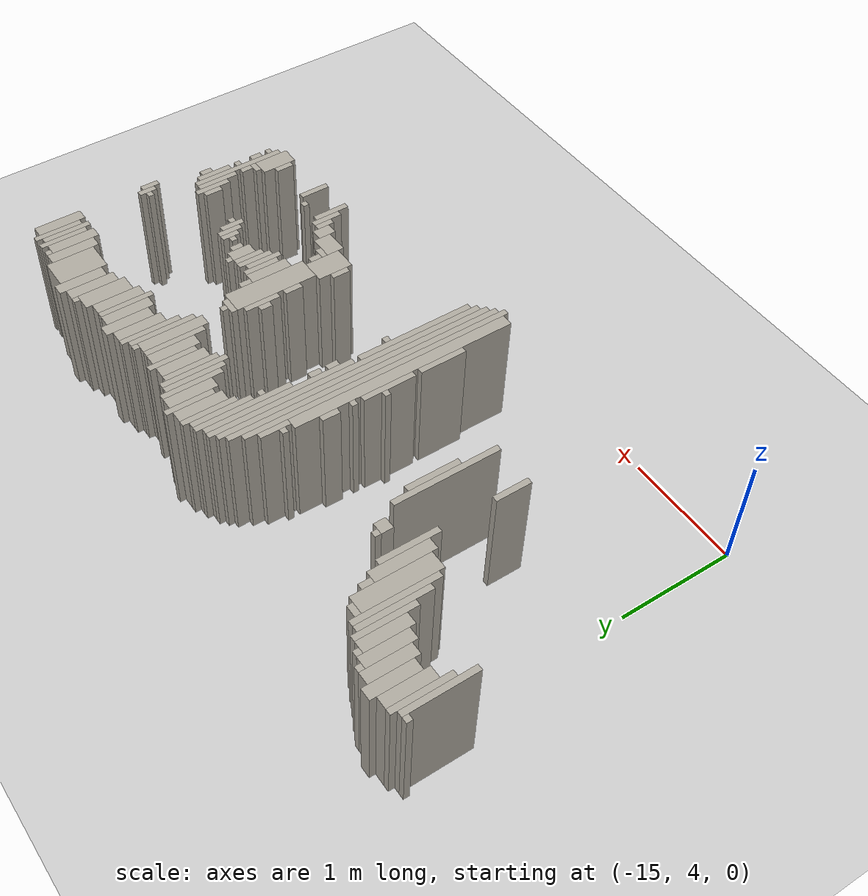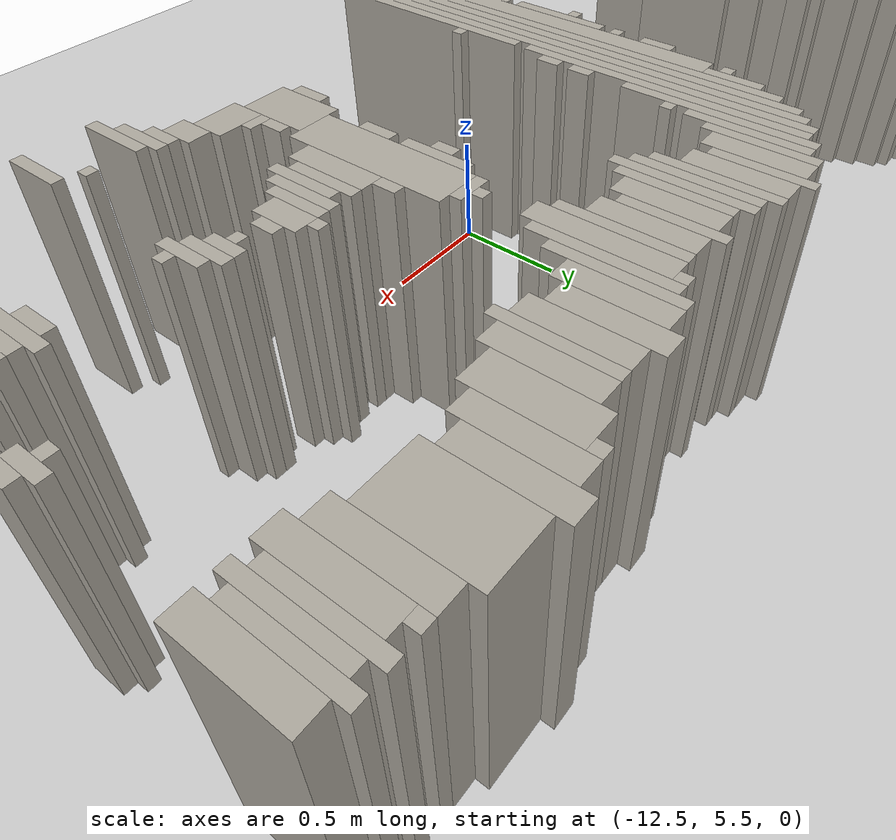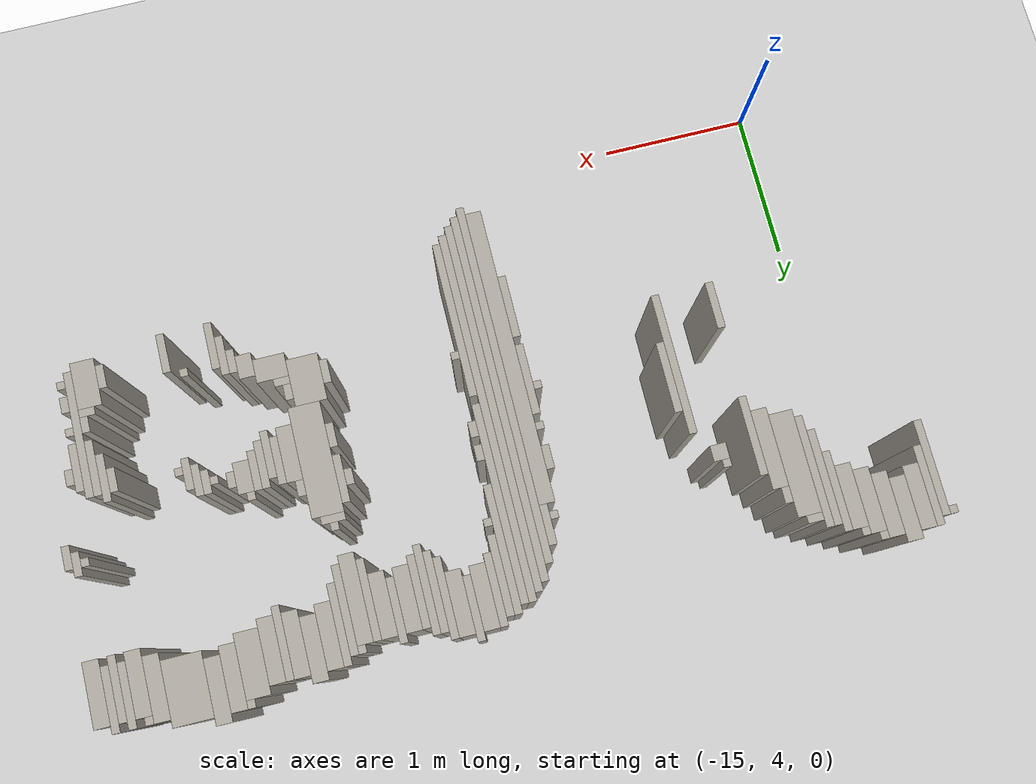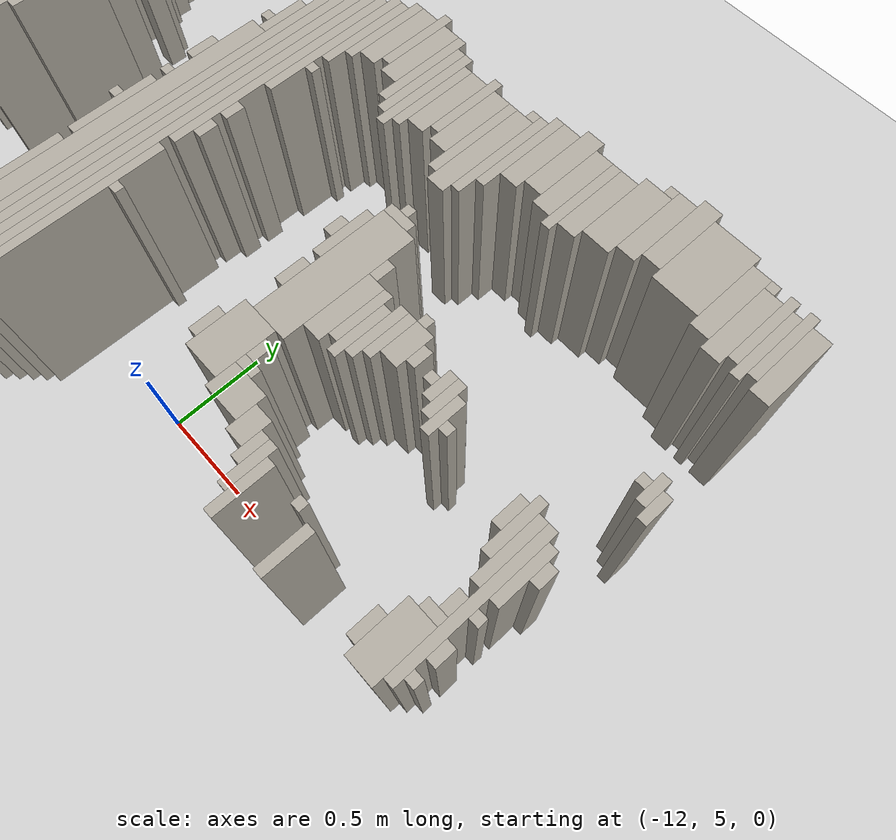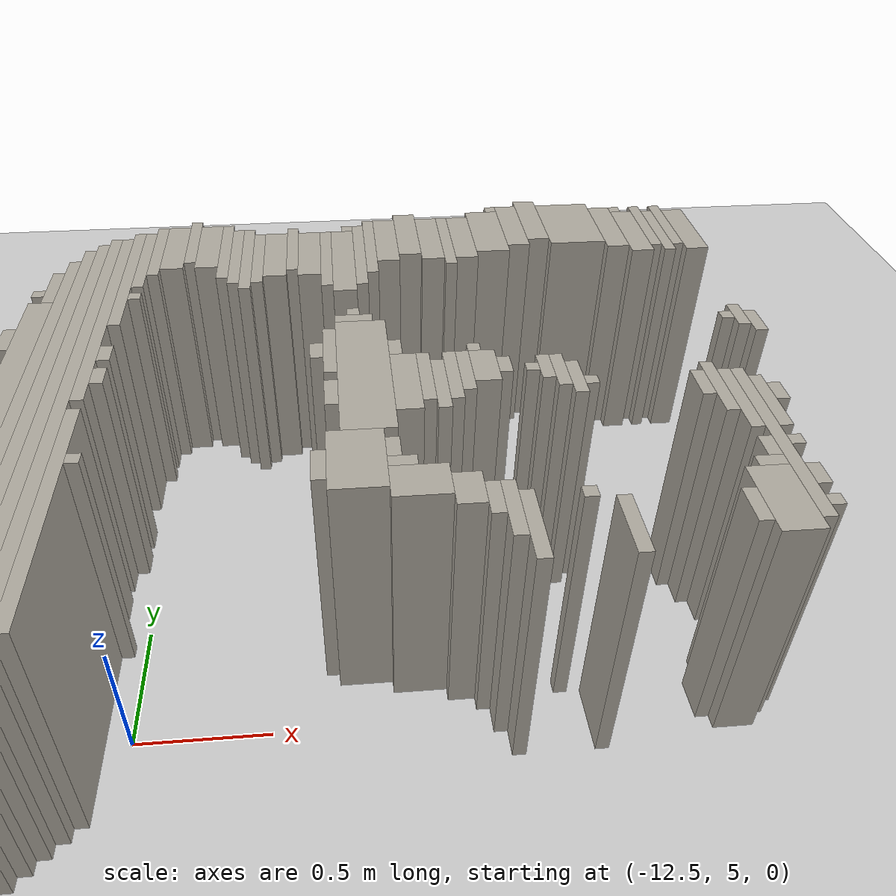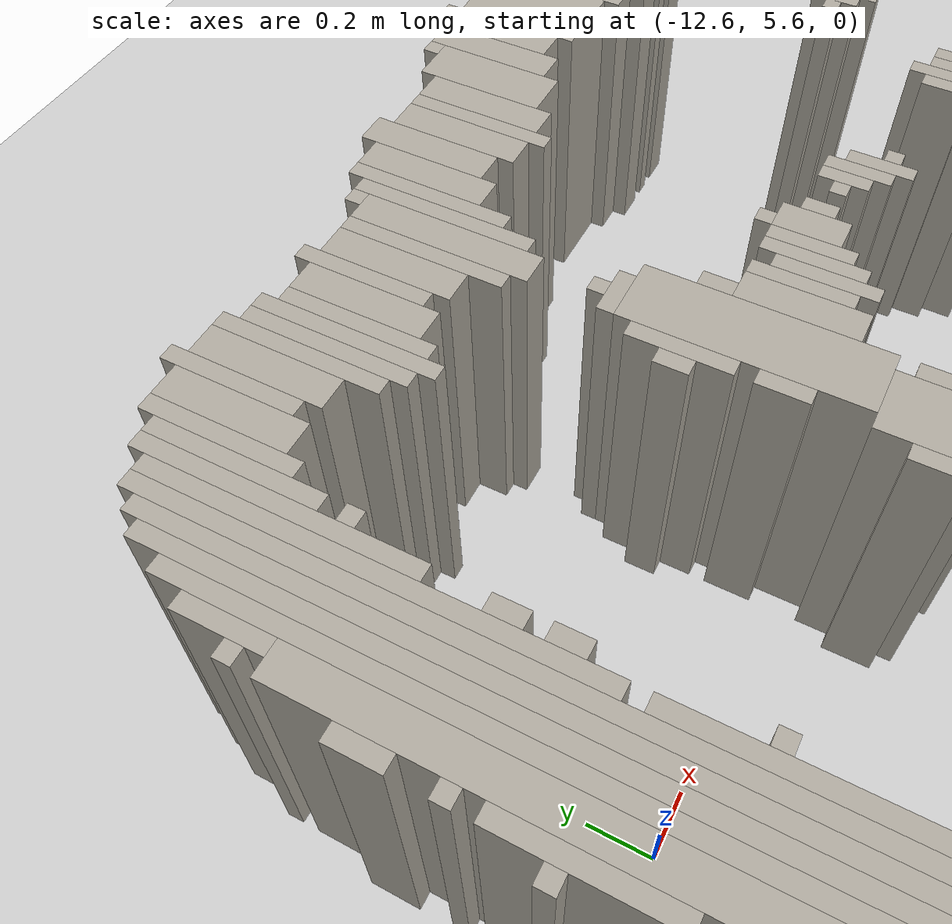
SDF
<sdf version="1.6">
 <world name="fr079_office">
  <include><uri>model://sun</uri></include>
  <include><uri>model://ground_plane</uri></include>
  <model name="fr079_office_walls">
   <static>true</static>
   <link name="w2711">
    <pose>-12.823 5.644 0.500 0 0 0</pose>
    <collision name="c"><geometry><box><size>0.050 2.300 1.000</size></box></geometry></collision>
    <visual name="v">
     <geometry><box><size>0.050 2.300 1.000</size></box></geometry>
     <material><ambient>0.68 0.66 0.62 1</ambient><diffuse>0.68 0.66 0.62 1</diffuse></material>
    </visual>
   </link>
   <link name="w2716">
    <pose>-12.898 5.494 0.500 0 0 0</pose>
    <collision name="c"><geometry><box><size>0.100 1.900 1.000</size></box></geometry></collision>
    <visual name="v">
     <geometry><box><size>0.100 1.900 1.000</size></box></geometry>
     <material><ambient>0.68 0.66 0.62 1</ambient><diffuse>0.68 0.66 0.62 1</diffuse></material>
    </visual>
   </link>
   <link name="w2717">
    <pose>-12.773 5.719 0.500 0 0 0</pose>
    <collision name="c"><geometry><box><size>0.050 2.350 1.000</size></box></geometry></collision>
    <visual name="v">
     <geometry><box><size>0.050 2.350 1.000</size></box></geometry>
     <material><ambient>0.68 0.66 0.62 1</ambient><diffuse>0.68 0.66 0.62 1</diffuse></material>
    </visual>
   </link>
   <link name="w2726">
    <pose>-12.723 5.769 0.500 0 0 0</pose>
    <collision name="c"><geometry><box><size>0.050 2.350 1.000</size></box></geometry></collision>
    <visual name="v">
     <geometry><box><size>0.050 2.350 1.000</size></box></geometry>
     <material><ambient>0.68 0.66 0.62 1</ambient><diffuse>0.68 0.66 0.62 1</diffuse></material>
    </visual>
   </link>
   <link name="w2739">
    <pose>-12.673 5.819 0.500 0 0 0</pose>
    <collision name="c"><geometry><box><size>0.050 2.350 1.000</size></box></geometry></collision>
    <visual name="v">
     <geometry><box><size>0.050 2.350 1.000</size></box></geometry>
     <material><ambient>0.68 0.66 0.62 1</ambient><diffuse>0.68 0.66 0.62 1</diffuse></material>
    </visual>
   </link>
   <link name="w2746">
    <pose>-12.623 5.194 0.500 0 0 0</pose>
    <collision name="c"><geometry><box><size>0.050 1.000 1.000</size></box></geometry></collision>
    <visual name="v">
     <geometry><box><size>0.050 1.000 1.000</size></box></geometry>
     <material><ambient>0.68 0.66 0.62 1</ambient><diffuse>0.68 0.66 0.62 1</diffuse></material>
    </visual>
   </link>
   <link name="w2768">
    <pose>-11.123 4.994 0.500 0 0 0</pose>
    <collision name="c"><geometry><box><size>0.050 0.300 1.000</size></box></geometry></collision>
    <visual name="v">
     <geometry><box><size>0.050 0.300 1.000</size></box></geometry>
     <material><ambient>0.68 0.66 0.62 1</ambient><diffuse>0.68 0.66 0.62 1</diffuse></material>
    </visual>
   </link>
   <link name="w2769">
    <pose>-10.823 4.969 0.500 0 0 0</pose>
    <collision name="c"><geometry><box><size>0.050 0.250 1.000</size></box></geometry></collision>
    <visual name="v">
     <geometry><box><size>0.050 0.250 1.000</size></box></geometry>
     <material><ambient>0.68 0.66 0.62 1</ambient><diffuse>0.68 0.66 0.62 1</diffuse></material>
    </visual>
   </link>
   <link name="w2775">
    <pose>-10.323 5.044 0.500 0 0 0</pose>
    <collision name="c"><geometry><box><size>0.150 0.300 1.000</size></box></geometry></collision>
    <visual name="v">
     <geometry><box><size>0.150 0.300 1.000</size></box></geometry>
     <material><ambient>0.68 0.66 0.62 1</ambient><diffuse>0.68 0.66 0.62 1</diffuse></material>
    </visual>
   </link>
   <link name="w2788">
    <pose>-11.173 5.069 0.500 0 0 0</pose>
    <collision name="c"><geometry><box><size>0.050 0.250 1.000</size></box></geometry></collision>
    <visual name="v">
     <geometry><box><size>0.050 0.250 1.000</size></box></geometry>
     <material><ambient>0.68 0.66 0.62 1</ambient><diffuse>0.68 0.66 0.62 1</diffuse></material>
    </visual>
   </link>
   <link name="w2789">
    <pose>-10.423 5.019 0.500 0 0 0</pose>
    <collision name="c"><geometry><box><size>0.050 0.150 1.000</size></box></geometry></collision>
    <visual name="v">
     <geometry><box><size>0.050 0.150 1.000</size></box></geometry>
     <material><ambient>0.68 0.66 0.62 1</ambient><diffuse>0.68 0.66 0.62 1</diffuse></material>
    </visual>
   </link>
   <link name="w2790">
    <pose>-10.223 5.344 0.500 0 0 0</pose>
    <collision name="c"><geometry><box><size>0.050 0.800 1.000</size></box></geometry></collision>
    <visual name="v">
     <geometry><box><size>0.050 0.800 1.000</size></box></geometry>
     <material><ambient>0.68 0.66 0.62 1</ambient><diffuse>0.68 0.66 0.62 1</diffuse></material>
    </visual>
   </link>
   <link name="w2801">
    <pose>-12.973 5.194 0.500 0 0 0</pose>
    <collision name="c"><geometry><box><size>0.050 0.400 1.000</size></box></geometry></collision>
    <visual name="v">
     <geometry><box><size>0.050 0.400 1.000</size></box></geometry>
     <material><ambient>0.68 0.66 0.62 1</ambient><diffuse>0.68 0.66 0.62 1</diffuse></material>
    </visual>
   </link>
   <link name="w2802">
    <pose>-10.173 5.019 0.500 0 0 0</pose>
    <collision name="c"><geometry><box><size>0.050 0.050 1.000</size></box></geometry></collision>
    <visual name="v">
     <geometry><box><size>0.050 0.050 1.000</size></box></geometry>
     <material><ambient>0.68 0.66 0.62 1</ambient><diffuse>0.68 0.66 0.62 1</diffuse></material>
    </visual>
   </link>
   <link name="w2817">
    <pose>-11.223 5.119 0.500 0 0 0</pose>
    <collision name="c"><geometry><box><size>0.050 0.150 1.000</size></box></geometry></collision>
    <visual name="v">
     <geometry><box><size>0.050 0.150 1.000</size></box></geometry>
     <material><ambient>0.68 0.66 0.62 1</ambient><diffuse>0.68 0.66 0.62 1</diffuse></material>
    </visual>
   </link>
   <link name="w2822">
    <pose>-11.298 5.169 0.500 0 0 0</pose>
    <collision name="c"><geometry><box><size>0.100 0.150 1.000</size></box></geometry></collision>
    <visual name="v">
     <geometry><box><size>0.100 0.150 1.000</size></box></geometry>
     <material><ambient>0.68 0.66 0.62 1</ambient><diffuse>0.68 0.66 0.62 1</diffuse></material>
    </visual>
   </link>
   <link name="w2823">
    <pose>-10.923 5.119 0.500 0 0 0</pose>
    <collision name="c"><geometry><box><size>0.050 0.050 1.000</size></box></geometry></collision>
    <visual name="v">
     <geometry><box><size>0.050 0.050 1.000</size></box></geometry>
     <material><ambient>0.68 0.66 0.62 1</ambient><diffuse>0.68 0.66 0.62 1</diffuse></material>
    </visual>
   </link>
   <link name="w2824">
    <pose>-10.173 5.144 0.500 0 0 0</pose>
    <collision name="c"><geometry><box><size>0.050 0.100 1.000</size></box></geometry></collision>
    <visual name="v">
     <geometry><box><size>0.050 0.100 1.000</size></box></geometry>
     <material><ambient>0.68 0.66 0.62 1</ambient><diffuse>0.68 0.66 0.62 1</diffuse></material>
    </visual>
   </link>
   <link name="w2833">
    <pose>-11.448 5.219 0.500 0 0 0</pose>
    <collision name="c"><geometry><box><size>0.200 0.150 1.000</size></box></geometry></collision>
    <visual name="v">
     <geometry><box><size>0.200 0.150 1.000</size></box></geometry>
     <material><ambient>0.68 0.66 0.62 1</ambient><diffuse>0.68 0.66 0.62 1</diffuse></material>
    </visual>
   </link>
   <link name="w2842">
    <pose>-11.648 5.344 0.500 0 0 0</pose>
    <collision name="c"><geometry><box><size>0.200 0.300 1.000</size></box></geometry></collision>
    <visual name="v">
     <geometry><box><size>0.200 0.300 1.000</size></box></geometry>
     <material><ambient>0.68 0.66 0.62 1</ambient><diffuse>0.68 0.66 0.62 1</diffuse></material>
    </visual>
   </link>
   <link name="w2843">
    <pose>-10.298 5.219 0.500 0 0 0</pose>
    <collision name="c"><geometry><box><size>0.100 0.050 1.000</size></box></geometry></collision>
    <visual name="v">
     <geometry><box><size>0.100 0.050 1.000</size></box></geometry>
     <material><ambient>0.68 0.66 0.62 1</ambient><diffuse>0.68 0.66 0.62 1</diffuse></material>
    </visual>
   </link>
   <link name="w2852">
    <pose>-11.773 5.319 0.500 0 0 0</pose>
    <collision name="c"><geometry><box><size>0.050 0.150 1.000</size></box></geometry></collision>
    <visual name="v">
     <geometry><box><size>0.050 0.150 1.000</size></box></geometry>
     <material><ambient>0.68 0.66 0.62 1</ambient><diffuse>0.68 0.66 0.62 1</diffuse></material>
    </visual>
   </link>
   <link name="w2853">
    <pose>-10.273 5.294 0.500 0 0 0</pose>
    <collision name="c"><geometry><box><size>0.050 0.100 1.000</size></box></geometry></collision>
    <visual name="v">
     <geometry><box><size>0.050 0.100 1.000</size></box></geometry>
     <material><ambient>0.68 0.66 0.62 1</ambient><diffuse>0.68 0.66 0.62 1</diffuse></material>
    </visual>
   </link>
   <link name="w2865">
    <pose>-11.498 5.319 0.500 0 0 0</pose>
    <collision name="c"><geometry><box><size>0.100 0.050 1.000</size></box></geometry></collision>
    <visual name="v">
     <geometry><box><size>0.100 0.050 1.000</size></box></geometry>
     <material><ambient>0.68 0.66 0.62 1</ambient><diffuse>0.68 0.66 0.62 1</diffuse></material>
    </visual>
   </link>
   <link name="w2866">
    <pose>-10.173 5.319 0.500 0 0 0</pose>
    <collision name="c"><geometry><box><size>0.050 0.050 1.000</size></box></geometry></collision>
    <visual name="v">
     <geometry><box><size>0.050 0.050 1.000</size></box></geometry>
     <material><ambient>0.68 0.66 0.62 1</ambient><diffuse>0.68 0.66 0.62 1</diffuse></material>
    </visual>
   </link>
   <link name="w2878">
    <pose>-14.223 5.494 0.500 0 0 0</pose>
    <collision name="c"><geometry><box><size>0.050 0.300 1.000</size></box></geometry></collision>
    <visual name="v">
     <geometry><box><size>0.050 0.300 1.000</size></box></geometry>
     <material><ambient>0.68 0.66 0.62 1</ambient><diffuse>0.68 0.66 0.62 1</diffuse></material>
    </visual>
   </link>
   <link name="w2879">
    <pose>-13.873 5.794 0.500 0 0 0</pose>
    <collision name="c"><geometry><box><size>0.050 0.900 1.000</size></box></geometry></collision>
    <visual name="v">
     <geometry><box><size>0.050 0.900 1.000</size></box></geometry>
     <material><ambient>0.68 0.66 0.62 1</ambient><diffuse>0.68 0.66 0.62 1</diffuse></material>
    </visual>
   </link>
   <link name="w2880">
    <pose>-11.523 5.394 0.500 0 0 0</pose>
    <collision name="c"><geometry><box><size>0.050 0.100 1.000</size></box></geometry></collision>
    <visual name="v">
     <geometry><box><size>0.050 0.100 1.000</size></box></geometry>
     <material><ambient>0.68 0.66 0.62 1</ambient><diffuse>0.68 0.66 0.62 1</diffuse></material>
    </visual>
   </link>
   <link name="w2892">
    <pose>-12.573 5.419 0.500 0 0 0</pose>
    <collision name="c"><geometry><box><size>0.050 0.050 1.000</size></box></geometry></collision>
    <visual name="v">
     <geometry><box><size>0.050 0.050 1.000</size></box></geometry>
     <material><ambient>0.68 0.66 0.62 1</ambient><diffuse>0.68 0.66 0.62 1</diffuse></material>
    </visual>
   </link>
   <link name="w2893">
    <pose>-10.273 5.569 0.500 0 0 0</pose>
    <collision name="c"><geometry><box><size>0.050 0.350 1.000</size></box></geometry></collision>
    <visual name="v">
     <geometry><box><size>0.050 0.350 1.000</size></box></geometry>
     <material><ambient>0.68 0.66 0.62 1</ambient><diffuse>0.68 0.66 0.62 1</diffuse></material>
    </visual>
   </link>
   <link name="w2894">
    <pose>-10.173 5.544 0.500 0 0 0</pose>
    <collision name="c"><geometry><box><size>0.050 0.300 1.000</size></box></geometry></collision>
    <visual name="v">
     <geometry><box><size>0.050 0.300 1.000</size></box></geometry>
     <material><ambient>0.68 0.66 0.62 1</ambient><diffuse>0.68 0.66 0.62 1</diffuse></material>
    </visual>
   </link>
   <link name="w2903">
    <pose>-12.973 5.669 0.500 0 0 0</pose>
    <collision name="c"><geometry><box><size>0.050 0.450 1.000</size></box></geometry></collision>
    <visual name="v">
     <geometry><box><size>0.050 0.450 1.000</size></box></geometry>
     <material><ambient>0.68 0.66 0.62 1</ambient><diffuse>0.68 0.66 0.62 1</diffuse></material>
    </visual>
   </link>
   <link name="w2914">
    <pose>-11.598 5.844 0.500 0 0 0</pose>
    <collision name="c"><geometry><box><size>0.200 0.700 1.000</size></box></geometry></collision>
    <visual name="v">
     <geometry><box><size>0.200 0.700 1.000</size></box></geometry>
     <material><ambient>0.68 0.66 0.62 1</ambient><diffuse>0.68 0.66 0.62 1</diffuse></material>
    </visual>
   </link>
   <link name="w2915">
    <pose>-10.323 5.644 0.500 0 0 0</pose>
    <collision name="c"><geometry><box><size>0.050 0.300 1.000</size></box></geometry></collision>
    <visual name="v">
     <geometry><box><size>0.050 0.300 1.000</size></box></geometry>
     <material><ambient>0.68 0.66 0.62 1</ambient><diffuse>0.68 0.66 0.62 1</diffuse></material>
    </visual>
   </link>
   <link name="w2928">
    <pose>-10.123 5.594 0.500 0 0 0</pose>
    <collision name="c"><geometry><box><size>0.050 0.100 1.000</size></box></geometry></collision>
    <visual name="v">
     <geometry><box><size>0.050 0.100 1.000</size></box></geometry>
     <material><ambient>0.68 0.66 0.62 1</ambient><diffuse>0.68 0.66 0.62 1</diffuse></material>
    </visual>
   </link>
   <link name="w2938">
    <pose>-11.448 5.769 0.500 0 0 0</pose>
    <collision name="c"><geometry><box><size>0.100 0.350 1.000</size></box></geometry></collision>
    <visual name="v">
     <geometry><box><size>0.100 0.350 1.000</size></box></geometry>
     <material><ambient>0.68 0.66 0.62 1</ambient><diffuse>0.68 0.66 0.62 1</diffuse></material>
    </visual>
   </link>
   <link name="w2939">
    <pose>-11.323 5.744 0.500 0 0 0</pose>
    <collision name="c"><geometry><box><size>0.050 0.300 1.000</size></box></geometry></collision>
    <visual name="v">
     <geometry><box><size>0.050 0.300 1.000</size></box></geometry>
     <material><ambient>0.68 0.66 0.62 1</ambient><diffuse>0.68 0.66 0.62 1</diffuse></material>
    </visual>
   </link>
   <link name="w2940">
    <pose>-10.373 5.669 0.500 0 0 0</pose>
    <collision name="c"><geometry><box><size>0.050 0.150 1.000</size></box></geometry></collision>
    <visual name="v">
     <geometry><box><size>0.050 0.150 1.000</size></box></geometry>
     <material><ambient>0.68 0.66 0.62 1</ambient><diffuse>0.68 0.66 0.62 1</diffuse></material>
    </visual>
   </link>
   <link name="w2953">
    <pose>-13.823 5.869 0.500 0 0 0</pose>
    <collision name="c"><geometry><box><size>0.050 0.450 1.000</size></box></geometry></collision>
    <visual name="v">
     <geometry><box><size>0.050 0.450 1.000</size></box></geometry>
     <material><ambient>0.68 0.66 0.62 1</ambient><diffuse>0.68 0.66 0.62 1</diffuse></material>
    </visual>
   </link>
   <link name="w2954">
    <pose>-11.723 5.719 0.500 0 0 0</pose>
    <collision name="c"><geometry><box><size>0.050 0.150 1.000</size></box></geometry></collision>
    <visual name="v">
     <geometry><box><size>0.050 0.150 1.000</size></box></geometry>
     <material><ambient>0.68 0.66 0.62 1</ambient><diffuse>0.68 0.66 0.62 1</diffuse></material>
    </visual>
   </link>
   <link name="w2955">
    <pose>-11.373 5.794 0.500 0 0 0</pose>
    <collision name="c"><geometry><box><size>0.050 0.300 1.000</size></box></geometry></collision>
    <visual name="v">
     <geometry><box><size>0.050 0.300 1.000</size></box></geometry>
     <material><ambient>0.68 0.66 0.62 1</ambient><diffuse>0.68 0.66 0.62 1</diffuse></material>
    </visual>
   </link>
   <link name="w2956">
    <pose>-11.273 5.794 0.500 0 0 0</pose>
    <collision name="c"><geometry><box><size>0.050 0.300 1.000</size></box></geometry></collision>
    <visual name="v">
     <geometry><box><size>0.050 0.300 1.000</size></box></geometry>
     <material><ambient>0.68 0.66 0.62 1</ambient><diffuse>0.68 0.66 0.62 1</diffuse></material>
    </visual>
   </link>
   <link name="w2957">
    <pose>-10.823 5.744 0.500 0 0 0</pose>
    <collision name="c"><geometry><box><size>0.050 0.200 1.000</size></box></geometry></collision>
    <visual name="v">
     <geometry><box><size>0.050 0.200 1.000</size></box></geometry>
     <material><ambient>0.68 0.66 0.62 1</ambient><diffuse>0.68 0.66 0.62 1</diffuse></material>
    </visual>
   </link>
   <link name="w2967">
    <pose>-13.023 5.719 0.500 0 0 0</pose>
    <collision name="c"><geometry><box><size>0.050 0.050 1.000</size></box></geometry></collision>
    <visual name="v">
     <geometry><box><size>0.050 0.050 1.000</size></box></geometry>
     <material><ambient>0.68 0.66 0.62 1</ambient><diffuse>0.68 0.66 0.62 1</diffuse></material>
    </visual>
   </link>
   <link name="w2968">
    <pose>-11.223 5.819 0.500 0 0 0</pose>
    <collision name="c"><geometry><box><size>0.050 0.250 1.000</size></box></geometry></collision>
    <visual name="v">
     <geometry><box><size>0.050 0.250 1.000</size></box></geometry>
     <material><ambient>0.68 0.66 0.62 1</ambient><diffuse>0.68 0.66 0.62 1</diffuse></material>
    </visual>
   </link>
   <link name="w2969">
    <pose>-10.873 5.794 0.500 0 0 0</pose>
    <collision name="c"><geometry><box><size>0.050 0.200 1.000</size></box></geometry></collision>
    <visual name="v">
     <geometry><box><size>0.050 0.200 1.000</size></box></geometry>
     <material><ambient>0.68 0.66 0.62 1</ambient><diffuse>0.68 0.66 0.62 1</diffuse></material>
    </visual>
   </link>
   <link name="w2970">
    <pose>-10.773 5.719 0.500 0 0 0</pose>
    <collision name="c"><geometry><box><size>0.050 0.050 1.000</size></box></geometry></collision>
    <visual name="v">
     <geometry><box><size>0.050 0.050 1.000</size></box></geometry>
     <material><ambient>0.68 0.66 0.62 1</ambient><diffuse>0.68 0.66 0.62 1</diffuse></material>
    </visual>
   </link>
   <link name="w2975">
    <pose>-12.623 6.369 0.500 0 0 0</pose>
    <collision name="c"><geometry><box><size>0.050 1.250 1.000</size></box></geometry></collision>
    <visual name="v">
     <geometry><box><size>0.050 1.250 1.000</size></box></geometry>
     <material><ambient>0.68 0.66 0.62 1</ambient><diffuse>0.68 0.66 0.62 1</diffuse></material>
    </visual>
   </link>
   <link name="w2976">
    <pose>-11.148 5.844 0.500 0 0 0</pose>
    <collision name="c"><geometry><box><size>0.100 0.200 1.000</size></box></geometry></collision>
    <visual name="v">
     <geometry><box><size>0.100 0.200 1.000</size></box></geometry>
     <material><ambient>0.68 0.66 0.62 1</ambient><diffuse>0.68 0.66 0.62 1</diffuse></material>
    </visual>
   </link>
   <link name="w2977">
    <pose>-10.923 5.819 0.500 0 0 0</pose>
    <collision name="c"><geometry><box><size>0.050 0.150 1.000</size></box></geometry></collision>
    <visual name="v">
     <geometry><box><size>0.050 0.150 1.000</size></box></geometry>
     <material><ambient>0.68 0.66 0.62 1</ambient><diffuse>0.68 0.66 0.62 1</diffuse></material>
    </visual>
   </link>
   <link name="w2986">
    <pose>-11.073 5.844 0.500 0 0 0</pose>
    <collision name="c"><geometry><box><size>0.050 0.100 1.000</size></box></geometry></collision>
    <visual name="v">
     <geometry><box><size>0.050 0.100 1.000</size></box></geometry>
     <material><ambient>0.68 0.66 0.62 1</ambient><diffuse>0.68 0.66 0.62 1</diffuse></material>
    </visual>
   </link>
   <link name="w2987">
    <pose>-10.973 5.819 0.500 0 0 0</pose>
    <collision name="c"><geometry><box><size>0.050 0.050 1.000</size></box></geometry></collision>
    <visual name="v">
     <geometry><box><size>0.050 0.050 1.000</size></box></geometry>
     <material><ambient>0.68 0.66 0.62 1</ambient><diffuse>0.68 0.66 0.62 1</diffuse></material>
    </visual>
   </link>
   <link name="w2995">
    <pose>-12.573 5.894 0.500 0 0 0</pose>
    <collision name="c"><geometry><box><size>0.050 0.100 1.000</size></box></geometry></collision>
    <visual name="v">
     <geometry><box><size>0.050 0.100 1.000</size></box></geometry>
     <material><ambient>0.68 0.66 0.62 1</ambient><diffuse>0.68 0.66 0.62 1</diffuse></material>
    </visual>
   </link>
   <link name="w2996">
    <pose>-11.723 5.994 0.500 0 0 0</pose>
    <collision name="c"><geometry><box><size>0.050 0.300 1.000</size></box></geometry></collision>
    <visual name="v">
     <geometry><box><size>0.050 0.300 1.000</size></box></geometry>
     <material><ambient>0.68 0.66 0.62 1</ambient><diffuse>0.68 0.66 0.62 1</diffuse></material>
    </visual>
   </link>
   <link name="w3011">
    <pose>-12.973 5.969 0.500 0 0 0</pose>
    <collision name="c"><geometry><box><size>0.050 0.050 1.000</size></box></geometry></collision>
    <visual name="v">
     <geometry><box><size>0.050 0.050 1.000</size></box></geometry>
     <material><ambient>0.68 0.66 0.62 1</ambient><diffuse>0.68 0.66 0.62 1</diffuse></material>
    </visual>
   </link>
   <link name="w3012">
    <pose>-11.773 5.994 0.500 0 0 0</pose>
    <collision name="c"><geometry><box><size>0.050 0.100 1.000</size></box></geometry></collision>
    <visual name="v">
     <geometry><box><size>0.050 0.100 1.000</size></box></geometry>
     <material><ambient>0.68 0.66 0.62 1</ambient><diffuse>0.68 0.66 0.62 1</diffuse></material>
    </visual>
   </link>
   <link name="w3013">
    <pose>-11.473 5.994 0.500 0 0 0</pose>
    <collision name="c"><geometry><box><size>0.050 0.100 1.000</size></box></geometry></collision>
    <visual name="v">
     <geometry><box><size>0.050 0.100 1.000</size></box></geometry>
     <material><ambient>0.68 0.66 0.62 1</ambient><diffuse>0.68 0.66 0.62 1</diffuse></material>
    </visual>
   </link>
   <link name="w3014">
    <pose>-11.173 5.969 0.500 0 0 0</pose>
    <collision name="c"><geometry><box><size>0.050 0.050 1.000</size></box></geometry></collision>
    <visual name="v">
     <geometry><box><size>0.050 0.050 1.000</size></box></geometry>
     <material><ambient>0.68 0.66 0.62 1</ambient><diffuse>0.68 0.66 0.62 1</diffuse></material>
    </visual>
   </link>
   <link name="w3020">
    <pose>-12.573 6.044 0.500 0 0 0</pose>
    <collision name="c"><geometry><box><size>0.050 0.100 1.000</size></box></geometry></collision>
    <visual name="v">
     <geometry><box><size>0.050 0.100 1.000</size></box></geometry>
     <material><ambient>0.68 0.66 0.62 1</ambient><diffuse>0.68 0.66 0.62 1</diffuse></material>
    </visual>
   </link>
   <link name="w3021">
    <pose>-10.023 6.069 0.500 0 0 0</pose>
    <collision name="c"><geometry><box><size>0.050 0.150 1.000</size></box></geometry></collision>
    <visual name="v">
     <geometry><box><size>0.050 0.150 1.000</size></box></geometry>
     <material><ambient>0.68 0.66 0.62 1</ambient><diffuse>0.68 0.66 0.62 1</diffuse></material>
    </visual>
   </link>
   <link name="w3033">
    <pose>-10.073 6.119 0.500 0 0 0</pose>
    <collision name="c"><geometry><box><size>0.050 0.150 1.000</size></box></geometry></collision>
    <visual name="v">
     <geometry><box><size>0.050 0.150 1.000</size></box></geometry>
     <material><ambient>0.68 0.66 0.62 1</ambient><diffuse>0.68 0.66 0.62 1</diffuse></material>
    </visual>
   </link>
   <link name="w3040">
    <pose>-14.223 6.344 0.500 0 0 0</pose>
    <collision name="c"><geometry><box><size>0.050 0.500 1.000</size></box></geometry></collision>
    <visual name="v">
     <geometry><box><size>0.050 0.500 1.000</size></box></geometry>
     <material><ambient>0.68 0.66 0.62 1</ambient><diffuse>0.68 0.66 0.62 1</diffuse></material>
    </visual>
   </link>
   <link name="w3041">
    <pose>-12.973 6.169 0.500 0 0 0</pose>
    <collision name="c"><geometry><box><size>0.050 0.150 1.000</size></box></geometry></collision>
    <visual name="v">
     <geometry><box><size>0.050 0.150 1.000</size></box></geometry>
     <material><ambient>0.68 0.66 0.62 1</ambient><diffuse>0.68 0.66 0.62 1</diffuse></material>
    </visual>
   </link>
   <link name="w3042">
    <pose>-10.123 6.119 0.500 0 0 0</pose>
    <collision name="c"><geometry><box><size>0.050 0.050 1.000</size></box></geometry></collision>
    <visual name="v">
     <geometry><box><size>0.050 0.050 1.000</size></box></geometry>
     <material><ambient>0.68 0.66 0.62 1</ambient><diffuse>0.68 0.66 0.62 1</diffuse></material>
    </visual>
   </link>
   <link name="w3060">
    <pose>-14.298 6.444 0.500 0 0 0</pose>
    <collision name="c"><geometry><box><size>0.100 0.500 1.000</size></box></geometry></collision>
    <visual name="v">
     <geometry><box><size>0.100 0.500 1.000</size></box></geometry>
     <material><ambient>0.68 0.66 0.62 1</ambient><diffuse>0.68 0.66 0.62 1</diffuse></material>
    </visual>
   </link>
   <link name="w3061">
    <pose>-11.623 6.219 0.500 0 0 0</pose>
    <collision name="c"><geometry><box><size>0.150 0.050 1.000</size></box></geometry></collision>
    <visual name="v">
     <geometry><box><size>0.150 0.050 1.000</size></box></geometry>
     <material><ambient>0.68 0.66 0.62 1</ambient><diffuse>0.68 0.66 0.62 1</diffuse></material>
    </visual>
   </link>
   <link name="w3070">
    <pose>-14.423 6.569 0.500 0 0 0</pose>
    <collision name="c"><geometry><box><size>0.150 0.650 1.000</size></box></geometry></collision>
    <visual name="v">
     <geometry><box><size>0.150 0.650 1.000</size></box></geometry>
     <material><ambient>0.68 0.66 0.62 1</ambient><diffuse>0.68 0.66 0.62 1</diffuse></material>
    </visual>
   </link>
   <link name="w3071">
    <pose>-12.573 6.644 0.500 0 0 0</pose>
    <collision name="c"><geometry><box><size>0.050 0.800 1.000</size></box></geometry></collision>
    <visual name="v">
     <geometry><box><size>0.050 0.800 1.000</size></box></geometry>
     <material><ambient>0.68 0.66 0.62 1</ambient><diffuse>0.68 0.66 0.62 1</diffuse></material>
    </visual>
   </link>
   <link name="w3072">
    <pose>-11.623 6.269 0.500 0 0 0</pose>
    <collision name="c"><geometry><box><size>0.050 0.050 1.000</size></box></geometry></collision>
    <visual name="v">
     <geometry><box><size>0.050 0.050 1.000</size></box></geometry>
     <material><ambient>0.68 0.66 0.62 1</ambient><diffuse>0.68 0.66 0.62 1</diffuse></material>
    </visual>
   </link>
   <link name="w3084">
    <pose>-14.523 6.644 0.500 0 0 0</pose>
    <collision name="c"><geometry><box><size>0.050 0.700 1.000</size></box></geometry></collision>
    <visual name="v">
     <geometry><box><size>0.050 0.700 1.000</size></box></geometry>
     <material><ambient>0.68 0.66 0.62 1</ambient><diffuse>0.68 0.66 0.62 1</diffuse></material>
    </visual>
   </link>
   <link name="w3094">
    <pose>-13.998 6.394 0.500 0 0 0</pose>
    <collision name="c"><geometry><box><size>0.100 0.100 1.000</size></box></geometry></collision>
    <visual name="v">
     <geometry><box><size>0.100 0.100 1.000</size></box></geometry>
     <material><ambient>0.68 0.66 0.62 1</ambient><diffuse>0.68 0.66 0.62 1</diffuse></material>
    </visual>
   </link>
   <link name="w3108">
    <pose>-14.573 6.694 0.500 0 0 0</pose>
    <collision name="c"><geometry><box><size>0.050 0.600 1.000</size></box></geometry></collision>
    <visual name="v">
     <geometry><box><size>0.050 0.600 1.000</size></box></geometry>
     <material><ambient>0.68 0.66 0.62 1</ambient><diffuse>0.68 0.66 0.62 1</diffuse></material>
    </visual>
   </link>
   <link name="w3117">
    <pose>-14.023 6.469 0.500 0 0 0</pose>
    <collision name="c"><geometry><box><size>0.050 0.050 1.000</size></box></geometry></collision>
    <visual name="v">
     <geometry><box><size>0.050 0.050 1.000</size></box></geometry>
     <material><ambient>0.68 0.66 0.62 1</ambient><diffuse>0.68 0.66 0.62 1</diffuse></material>
    </visual>
   </link>
   <link name="w3118">
    <pose>-12.873 6.569 0.500 0 0 0</pose>
    <collision name="c"><geometry><box><size>0.050 0.250 1.000</size></box></geometry></collision>
    <visual name="v">
     <geometry><box><size>0.050 0.250 1.000</size></box></geometry>
     <material><ambient>0.68 0.66 0.62 1</ambient><diffuse>0.68 0.66 0.62 1</diffuse></material>
    </visual>
   </link>
   <link name="w3119">
    <pose>-12.523 6.469 0.500 0 0 0</pose>
    <collision name="c"><geometry><box><size>0.050 0.050 1.000</size></box></geometry></collision>
    <visual name="v">
     <geometry><box><size>0.050 0.050 1.000</size></box></geometry>
     <material><ambient>0.68 0.66 0.62 1</ambient><diffuse>0.68 0.66 0.62 1</diffuse></material>
    </visual>
   </link>
   <link name="w3120">
    <pose>-11.648 6.719 0.500 0 0 0</pose>
    <collision name="c"><geometry><box><size>0.100 0.550 1.000</size></box></geometry></collision>
    <visual name="v">
     <geometry><box><size>0.100 0.550 1.000</size></box></geometry>
     <material><ambient>0.68 0.66 0.62 1</ambient><diffuse>0.68 0.66 0.62 1</diffuse></material>
    </visual>
   </link>
   <link name="w3135">
    <pose>-15.223 6.794 0.500 0 0 0</pose>
    <collision name="c"><geometry><box><size>0.050 0.600 1.000</size></box></geometry></collision>
    <visual name="v">
     <geometry><box><size>0.050 0.600 1.000</size></box></geometry>
     <material><ambient>0.68 0.66 0.62 1</ambient><diffuse>0.68 0.66 0.62 1</diffuse></material>
    </visual>
   </link>
   <link name="w3136">
    <pose>-12.923 6.519 0.500 0 0 0</pose>
    <collision name="c"><geometry><box><size>0.050 0.050 1.000</size></box></geometry></collision>
    <visual name="v">
     <geometry><box><size>0.050 0.050 1.000</size></box></geometry>
     <material><ambient>0.68 0.66 0.62 1</ambient><diffuse>0.68 0.66 0.62 1</diffuse></material>
    </visual>
   </link>
   <link name="w3137">
    <pose>-12.073 6.769 0.500 0 0 0</pose>
    <collision name="c"><geometry><box><size>0.050 0.550 1.000</size></box></geometry></collision>
    <visual name="v">
     <geometry><box><size>0.050 0.550 1.000</size></box></geometry>
     <material><ambient>0.68 0.66 0.62 1</ambient><diffuse>0.68 0.66 0.62 1</diffuse></material>
    </visual>
   </link>
   <link name="w3138">
    <pose>-11.723 6.744 0.500 0 0 0</pose>
    <collision name="c"><geometry><box><size>0.050 0.500 1.000</size></box></geometry></collision>
    <visual name="v">
     <geometry><box><size>0.050 0.500 1.000</size></box></geometry>
     <material><ambient>0.68 0.66 0.62 1</ambient><diffuse>0.68 0.66 0.62 1</diffuse></material>
    </visual>
   </link>
   <link name="w3139">
    <pose>-11.573 6.769 0.500 0 0 0</pose>
    <collision name="c"><geometry><box><size>0.050 0.550 1.000</size></box></geometry></collision>
    <visual name="v">
     <geometry><box><size>0.050 0.550 1.000</size></box></geometry>
     <material><ambient>0.68 0.66 0.62 1</ambient><diffuse>0.68 0.66 0.62 1</diffuse></material>
    </visual>
   </link>
   <link name="w3151">
    <pose>-14.623 6.794 0.500 0 0 0</pose>
    <collision name="c"><geometry><box><size>0.050 0.500 1.000</size></box></geometry></collision>
    <visual name="v">
     <geometry><box><size>0.050 0.500 1.000</size></box></geometry>
     <material><ambient>0.68 0.66 0.62 1</ambient><diffuse>0.68 0.66 0.62 1</diffuse></material>
    </visual>
   </link>
   <link name="w3152">
    <pose>-12.523 6.794 0.500 0 0 0</pose>
    <collision name="c"><geometry><box><size>0.050 0.500 1.000</size></box></geometry></collision>
    <visual name="v">
     <geometry><box><size>0.050 0.500 1.000</size></box></geometry>
     <material><ambient>0.68 0.66 0.62 1</ambient><diffuse>0.68 0.66 0.62 1</diffuse></material>
    </visual>
   </link>
   <link name="w3153">
    <pose>-12.123 6.794 0.500 0 0 0</pose>
    <collision name="c"><geometry><box><size>0.050 0.500 1.000</size></box></geometry></collision>
    <visual name="v">
     <geometry><box><size>0.050 0.500 1.000</size></box></geometry>
     <material><ambient>0.68 0.66 0.62 1</ambient><diffuse>0.68 0.66 0.62 1</diffuse></material>
    </visual>
   </link>
   <link name="w3154">
    <pose>-12.023 6.769 0.500 0 0 0</pose>
    <collision name="c"><geometry><box><size>0.050 0.450 1.000</size></box></geometry></collision>
    <visual name="v">
     <geometry><box><size>0.050 0.450 1.000</size></box></geometry>
     <material><ambient>0.68 0.66 0.62 1</ambient><diffuse>0.68 0.66 0.62 1</diffuse></material>
    </visual>
   </link>
   <link name="w3172">
    <pose>-12.173 6.844 0.500 0 0 0</pose>
    <collision name="c"><geometry><box><size>0.050 0.500 1.000</size></box></geometry></collision>
    <visual name="v">
     <geometry><box><size>0.050 0.500 1.000</size></box></geometry>
     <material><ambient>0.68 0.66 0.62 1</ambient><diffuse>0.68 0.66 0.62 1</diffuse></material>
    </visual>
   </link>
   <link name="w3173">
    <pose>-11.948 6.794 0.500 0 0 0</pose>
    <collision name="c"><geometry><box><size>0.100 0.400 1.000</size></box></geometry></collision>
    <visual name="v">
     <geometry><box><size>0.100 0.400 1.000</size></box></geometry>
     <material><ambient>0.68 0.66 0.62 1</ambient><diffuse>0.68 0.66 0.62 1</diffuse></material>
    </visual>
   </link>
   <link name="w3174">
    <pose>-11.798 6.794 0.500 0 0 0</pose>
    <collision name="c"><geometry><box><size>0.100 0.400 1.000</size></box></geometry></collision>
    <visual name="v">
     <geometry><box><size>0.100 0.400 1.000</size></box></geometry>
     <material><ambient>0.68 0.66 0.62 1</ambient><diffuse>0.68 0.66 0.62 1</diffuse></material>
    </visual>
   </link>
   <link name="w3175">
    <pose>-11.523 6.844 0.500 0 0 0</pose>
    <collision name="c"><geometry><box><size>0.050 0.500 1.000</size></box></geometry></collision>
    <visual name="v">
     <geometry><box><size>0.050 0.500 1.000</size></box></geometry>
     <material><ambient>0.68 0.66 0.62 1</ambient><diffuse>0.68 0.66 0.62 1</diffuse></material>
    </visual>
   </link>
   <link name="w3197">
    <pose>-15.173 6.894 0.500 0 0 0</pose>
    <collision name="c"><geometry><box><size>0.050 0.500 1.000</size></box></geometry></collision>
    <visual name="v">
     <geometry><box><size>0.050 0.500 1.000</size></box></geometry>
     <material><ambient>0.68 0.66 0.62 1</ambient><diffuse>0.68 0.66 0.62 1</diffuse></material>
    </visual>
   </link>
   <link name="w3198">
    <pose>-14.698 6.844 0.500 0 0 0</pose>
    <collision name="c"><geometry><box><size>0.100 0.400 1.000</size></box></geometry></collision>
    <visual name="v">
     <geometry><box><size>0.100 0.400 1.000</size></box></geometry>
     <material><ambient>0.68 0.66 0.62 1</ambient><diffuse>0.68 0.66 0.62 1</diffuse></material>
    </visual>
   </link>
   <link name="w3199">
    <pose>-12.473 6.869 0.500 0 0 0</pose>
    <collision name="c"><geometry><box><size>0.050 0.450 1.000</size></box></geometry></collision>
    <visual name="v">
     <geometry><box><size>0.050 0.450 1.000</size></box></geometry>
     <material><ambient>0.68 0.66 0.62 1</ambient><diffuse>0.68 0.66 0.62 1</diffuse></material>
    </visual>
   </link>
   <link name="w3200">
    <pose>-11.873 6.844 0.500 0 0 0</pose>
    <collision name="c"><geometry><box><size>0.050 0.400 1.000</size></box></geometry></collision>
    <visual name="v">
     <geometry><box><size>0.050 0.400 1.000</size></box></geometry>
     <material><ambient>0.68 0.66 0.62 1</ambient><diffuse>0.68 0.66 0.62 1</diffuse></material>
    </visual>
   </link>
   <link name="w3201">
    <pose>-11.173 6.869 0.500 0 0 0</pose>
    <collision name="c"><geometry><box><size>0.050 0.450 1.000</size></box></geometry></collision>
    <visual name="v">
     <geometry><box><size>0.050 0.450 1.000</size></box></geometry>
     <material><ambient>0.68 0.66 0.62 1</ambient><diffuse>0.68 0.66 0.62 1</diffuse></material>
    </visual>
   </link>
   <link name="w3227">
    <pose>-14.798 6.894 0.500 0 0 0</pose>
    <collision name="c"><geometry><box><size>0.100 0.400 1.000</size></box></geometry></collision>
    <visual name="v">
     <geometry><box><size>0.100 0.400 1.000</size></box></geometry>
     <material><ambient>0.68 0.66 0.62 1</ambient><diffuse>0.68 0.66 0.62 1</diffuse></material>
    </visual>
   </link>
   <link name="w3228">
    <pose>-14.323 6.744 0.500 0 0 0</pose>
    <collision name="c"><geometry><box><size>0.050 0.100 1.000</size></box></geometry></collision>
    <visual name="v">
     <geometry><box><size>0.050 0.100 1.000</size></box></geometry>
     <material><ambient>0.68 0.66 0.62 1</ambient><diffuse>0.68 0.66 0.62 1</diffuse></material>
    </visual>
   </link>
   <link name="w3229">
    <pose>-12.398 6.894 0.500 0 0 0</pose>
    <collision name="c"><geometry><box><size>0.100 0.400 1.000</size></box></geometry></collision>
    <visual name="v">
     <geometry><box><size>0.100 0.400 1.000</size></box></geometry>
     <material><ambient>0.68 0.66 0.62 1</ambient><diffuse>0.68 0.66 0.62 1</diffuse></material>
    </visual>
   </link>
   <link name="w3230">
    <pose>-12.248 6.894 0.500 0 0 0</pose>
    <collision name="c"><geometry><box><size>0.100 0.400 1.000</size></box></geometry></collision>
    <visual name="v">
     <geometry><box><size>0.100 0.400 1.000</size></box></geometry>
     <material><ambient>0.68 0.66 0.62 1</ambient><diffuse>0.68 0.66 0.62 1</diffuse></material>
    </visual>
   </link>
   <link name="w3231">
    <pose>-11.448 6.894 0.500 0 0 0</pose>
    <collision name="c"><geometry><box><size>0.100 0.400 1.000</size></box></geometry></collision>
    <visual name="v">
     <geometry><box><size>0.100 0.400 1.000</size></box></geometry>
     <material><ambient>0.68 0.66 0.62 1</ambient><diffuse>0.68 0.66 0.62 1</diffuse></material>
    </visual>
   </link>
   <link name="w3232">
    <pose>-11.248 6.894 0.500 0 0 0</pose>
    <collision name="c"><geometry><box><size>0.100 0.400 1.000</size></box></geometry></collision>
    <visual name="v">
     <geometry><box><size>0.100 0.400 1.000</size></box></geometry>
     <material><ambient>0.68 0.66 0.62 1</ambient><diffuse>0.68 0.66 0.62 1</diffuse></material>
    </visual>
   </link>
   <link name="w3233">
    <pose>-11.098 6.894 0.500 0 0 0</pose>
    <collision name="c"><geometry><box><size>0.100 0.400 1.000</size></box></geometry></collision>
    <visual name="v">
     <geometry><box><size>0.100 0.400 1.000</size></box></geometry>
     <material><ambient>0.68 0.66 0.62 1</ambient><diffuse>0.68 0.66 0.62 1</diffuse></material>
    </visual>
   </link>
   <link name="w3234">
    <pose>-10.298 6.894 0.500 0 0 0</pose>
    <collision name="c"><geometry><box><size>0.100 0.400 1.000</size></box></geometry></collision>
    <visual name="v">
     <geometry><box><size>0.100 0.400 1.000</size></box></geometry>
     <material><ambient>0.68 0.66 0.62 1</ambient><diffuse>0.68 0.66 0.62 1</diffuse></material>
    </visual>
   </link>
   <link name="w3235">
    <pose>-10.173 6.894 0.500 0 0 0</pose>
    <collision name="c"><geometry><box><size>0.050 0.400 1.000</size></box></geometry></collision>
    <visual name="v">
     <geometry><box><size>0.050 0.400 1.000</size></box></geometry>
     <material><ambient>0.68 0.66 0.62 1</ambient><diffuse>0.68 0.66 0.62 1</diffuse></material>
    </visual>
   </link>
   <link name="w3236">
    <pose>-10.048 6.894 0.500 0 0 0</pose>
    <collision name="c"><geometry><box><size>0.100 0.400 1.000</size></box></geometry></collision>
    <visual name="v">
     <geometry><box><size>0.100 0.400 1.000</size></box></geometry>
     <material><ambient>0.68 0.66 0.62 1</ambient><diffuse>0.68 0.66 0.62 1</diffuse></material>
    </visual>
   </link>
   <link name="w3262">
    <pose>-15.098 6.944 0.500 0 0 0</pose>
    <collision name="c"><geometry><box><size>0.100 0.400 1.000</size></box></geometry></collision>
    <visual name="v">
     <geometry><box><size>0.100 0.400 1.000</size></box></geometry>
     <material><ambient>0.68 0.66 0.62 1</ambient><diffuse>0.68 0.66 0.62 1</diffuse></material>
    </visual>
   </link>
   <link name="w3263">
    <pose>-14.898 6.944 0.500 0 0 0</pose>
    <collision name="c"><geometry><box><size>0.100 0.400 1.000</size></box></geometry></collision>
    <visual name="v">
     <geometry><box><size>0.100 0.400 1.000</size></box></geometry>
     <material><ambient>0.68 0.66 0.62 1</ambient><diffuse>0.68 0.66 0.62 1</diffuse></material>
    </visual>
   </link>
   <link name="w3264">
    <pose>-12.323 6.944 0.500 0 0 0</pose>
    <collision name="c"><geometry><box><size>0.050 0.400 1.000</size></box></geometry></collision>
    <visual name="v">
     <geometry><box><size>0.050 0.400 1.000</size></box></geometry>
     <material><ambient>0.68 0.66 0.62 1</ambient><diffuse>0.68 0.66 0.62 1</diffuse></material>
    </visual>
   </link>
   <link name="w3265">
    <pose>-11.348 6.944 0.500 0 0 0</pose>
    <collision name="c"><geometry><box><size>0.100 0.400 1.000</size></box></geometry></collision>
    <visual name="v">
     <geometry><box><size>0.100 0.400 1.000</size></box></geometry>
     <material><ambient>0.68 0.66 0.62 1</ambient><diffuse>0.68 0.66 0.62 1</diffuse></material>
    </visual>
   </link>
   <link name="w3266">
    <pose>-10.973 6.944 0.500 0 0 0</pose>
    <collision name="c"><geometry><box><size>0.150 0.400 1.000</size></box></geometry></collision>
    <visual name="v">
     <geometry><box><size>0.150 0.400 1.000</size></box></geometry>
     <material><ambient>0.68 0.66 0.62 1</ambient><diffuse>0.68 0.66 0.62 1</diffuse></material>
    </visual>
   </link>
   <link name="w3267">
    <pose>-10.398 6.944 0.500 0 0 0</pose>
    <collision name="c"><geometry><box><size>0.100 0.400 1.000</size></box></geometry></collision>
    <visual name="v">
     <geometry><box><size>0.100 0.400 1.000</size></box></geometry>
     <material><ambient>0.68 0.66 0.62 1</ambient><diffuse>0.68 0.66 0.62 1</diffuse></material>
    </visual>
   </link>
   <link name="w3268">
    <pose>-10.223 6.944 0.500 0 0 0</pose>
    <collision name="c"><geometry><box><size>0.050 0.400 1.000</size></box></geometry></collision>
    <visual name="v">
     <geometry><box><size>0.050 0.400 1.000</size></box></geometry>
     <material><ambient>0.68 0.66 0.62 1</ambient><diffuse>0.68 0.66 0.62 1</diffuse></material>
    </visual>
   </link>
   <link name="w3269">
    <pose>-10.123 6.944 0.500 0 0 0</pose>
    <collision name="c"><geometry><box><size>0.050 0.400 1.000</size></box></geometry></collision>
    <visual name="v">
     <geometry><box><size>0.050 0.400 1.000</size></box></geometry>
     <material><ambient>0.68 0.66 0.62 1</ambient><diffuse>0.68 0.66 0.62 1</diffuse></material>
    </visual>
   </link>
   <link name="w3283">
    <pose>-14.998 6.994 0.500 0 0 0</pose>
    <collision name="c"><geometry><box><size>0.100 0.400 1.000</size></box></geometry></collision>
    <visual name="v">
     <geometry><box><size>0.100 0.400 1.000</size></box></geometry>
     <material><ambient>0.68 0.66 0.62 1</ambient><diffuse>0.68 0.66 0.62 1</diffuse></material>
    </visual>
   </link>
   <link name="w3284">
    <pose>-10.848 6.994 0.500 0 0 0</pose>
    <collision name="c"><geometry><box><size>0.100 0.400 1.000</size></box></geometry></collision>
    <visual name="v">
     <geometry><box><size>0.100 0.400 1.000</size></box></geometry>
     <material><ambient>0.68 0.66 0.62 1</ambient><diffuse>0.68 0.66 0.62 1</diffuse></material>
    </visual>
   </link>
   <link name="w3285">
    <pose>-10.573 6.994 0.500 0 0 0</pose>
    <collision name="c"><geometry><box><size>0.250 0.400 1.000</size></box></geometry></collision>
    <visual name="v">
     <geometry><box><size>0.250 0.400 1.000</size></box></geometry>
     <material><ambient>0.68 0.66 0.62 1</ambient><diffuse>0.68 0.66 0.62 1</diffuse></material>
    </visual>
   </link>
   <link name="w3291">
    <pose>-10.748 7.044 0.500 0 0 0</pose>
    <collision name="c"><geometry><box><size>0.100 0.400 1.000</size></box></geometry></collision>
    <visual name="v">
     <geometry><box><size>0.100 0.400 1.000</size></box></geometry>
     <material><ambient>0.68 0.66 0.62 1</ambient><diffuse>0.68 0.66 0.62 1</diffuse></material>
    </visual>
   </link>
   <link name="w3297">
    <pose>-14.448 6.919 0.500 0 0 0</pose>
    <collision name="c"><geometry><box><size>0.100 0.050 1.000</size></box></geometry></collision>
    <visual name="v">
     <geometry><box><size>0.100 0.050 1.000</size></box></geometry>
     <material><ambient>0.68 0.66 0.62 1</ambient><diffuse>0.68 0.66 0.62 1</diffuse></material>
    </visual>
   </link>
   <link name="w3304">
    <pose>-11.623 7.019 0.500 0 0 0</pose>
    <collision name="c"><geometry><box><size>0.050 0.050 1.000</size></box></geometry></collision>
    <visual name="v">
     <geometry><box><size>0.050 0.050 1.000</size></box></geometry>
     <material><ambient>0.68 0.66 0.62 1</ambient><diffuse>0.68 0.66 0.62 1</diffuse></material>
    </visual>
   </link>
   <link name="w3307">
    <pose>-15.273 7.069 0.500 0 0 0</pose>
    <collision name="c"><geometry><box><size>0.050 0.050 1.000</size></box></geometry></collision>
    <visual name="v">
     <geometry><box><size>0.050 0.050 1.000</size></box></geometry>
     <material><ambient>0.68 0.66 0.62 1</ambient><diffuse>0.68 0.66 0.62 1</diffuse></material>
    </visual>
   </link>
   <link name="w3308">
    <pose>-14.723 7.069 0.500 0 0 0</pose>
    <collision name="c"><geometry><box><size>0.050 0.050 1.000</size></box></geometry></collision>
    <visual name="v">
     <geometry><box><size>0.050 0.050 1.000</size></box></geometry>
     <material><ambient>0.68 0.66 0.62 1</ambient><diffuse>0.68 0.66 0.62 1</diffuse></material>
    </visual>
   </link>
   <link name="w3311">
    <pose>-14.823 7.119 0.500 0 0 0</pose>
    <collision name="c"><geometry><box><size>0.050 0.050 1.000</size></box></geometry></collision>
    <visual name="v">
     <geometry><box><size>0.050 0.050 1.000</size></box></geometry>
     <material><ambient>0.68 0.66 0.62 1</ambient><diffuse>0.68 0.66 0.62 1</diffuse></material>
    </visual>
   </link>
   <link name="w3312">
    <pose>-10.323 7.119 0.500 0 0 0</pose>
    <collision name="c"><geometry><box><size>0.050 0.050 1.000</size></box></geometry></collision>
    <visual name="v">
     <geometry><box><size>0.050 0.050 1.000</size></box></geometry>
     <material><ambient>0.68 0.66 0.62 1</ambient><diffuse>0.68 0.66 0.62 1</diffuse></material>
    </visual>
   </link>
   <link name="w3314">
    <pose>-10.923 7.169 0.500 0 0 0</pose>
    <collision name="c"><geometry><box><size>0.050 0.050 1.000</size></box></geometry></collision>
    <visual name="v">
     <geometry><box><size>0.050 0.050 1.000</size></box></geometry>
     <material><ambient>0.68 0.66 0.62 1</ambient><diffuse>0.68 0.66 0.62 1</diffuse></material>
    </visual>
   </link>
  </model>
 </world>
</sdf>
